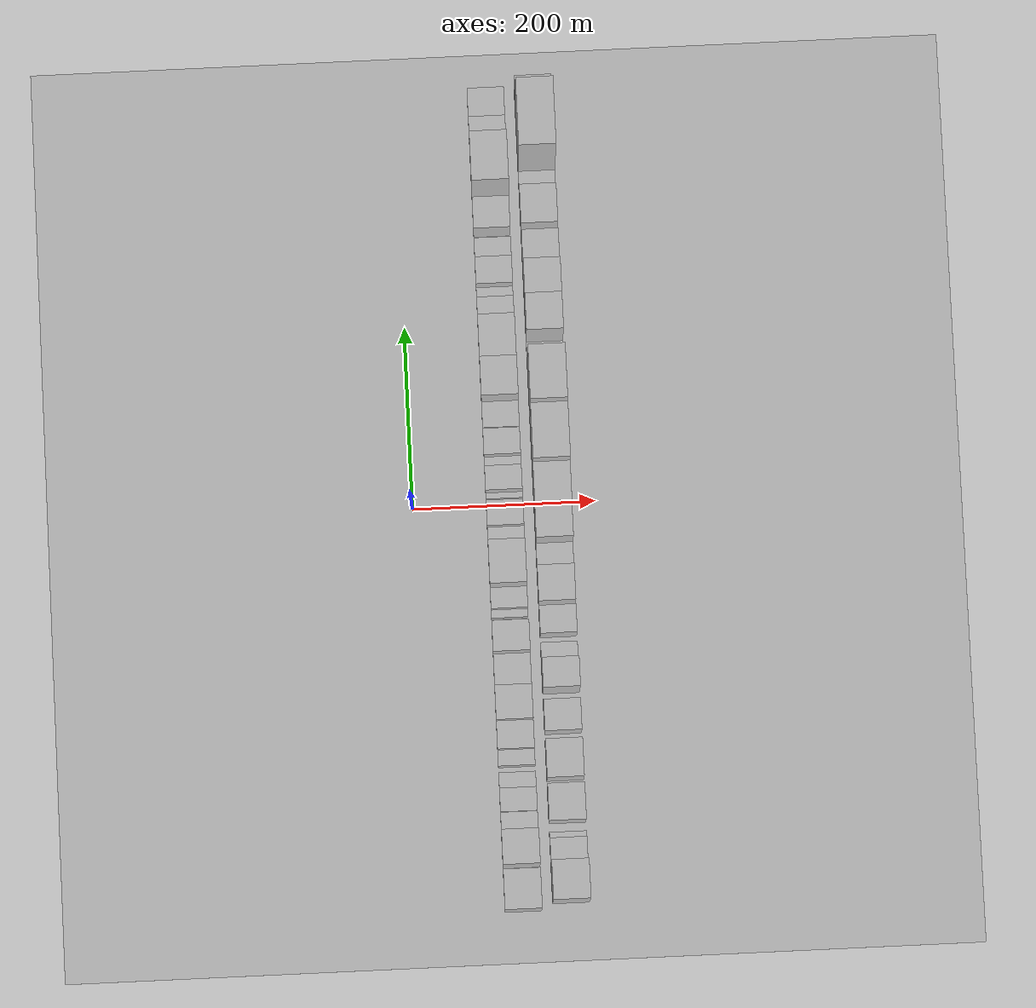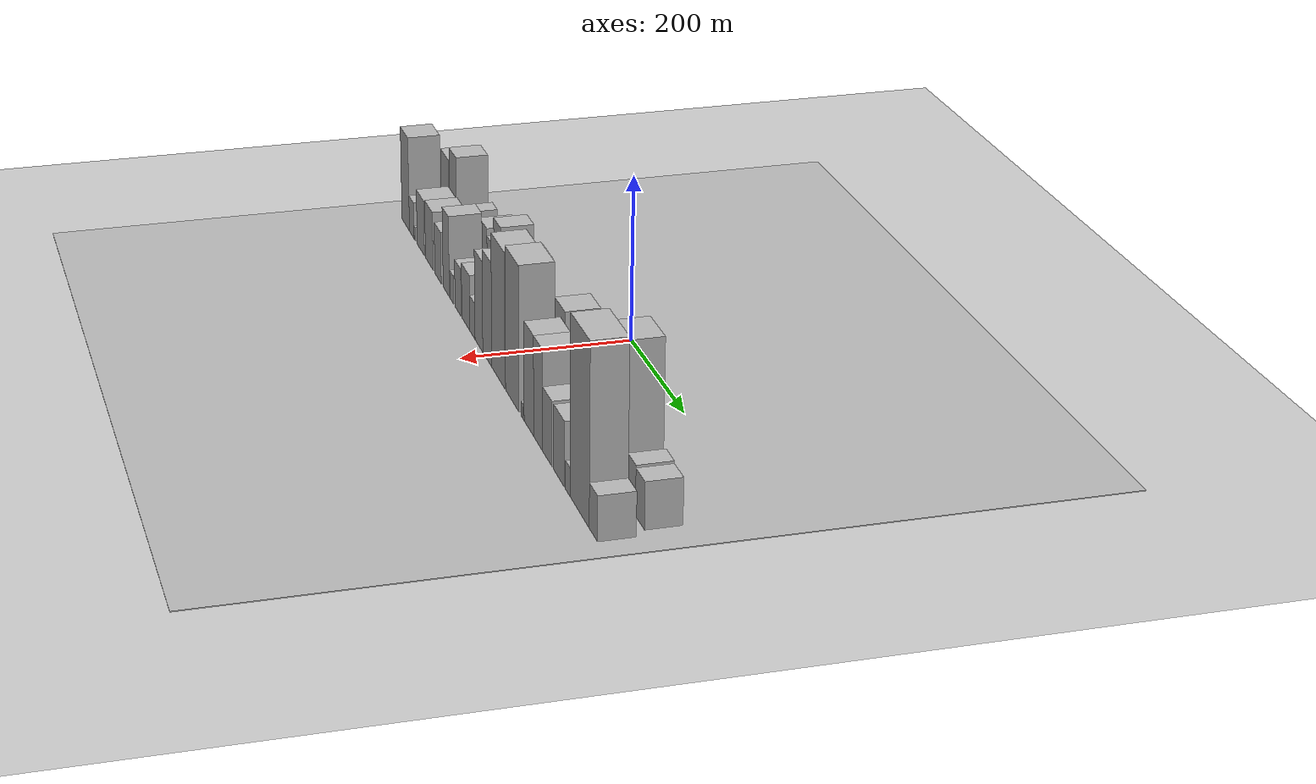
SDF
<sdf version="1.6">
 <world name="default">
  <include><name>ground_plane_1</name><uri>model://HANNAS_ground_plane</uri></include>
  <include>
   <name>ground_plane_2</name>
   <uri>model://HANNAS_ground_plane</uri>
   <pose>100 0 0  0 0 0</pose>
  </include>
  <model name="building_1">
   <static>1</static>
   <pose>100.0000 -422.2307 0 0.000000 0.000000 0.000000</pose>
   <link name="link">
    <pose>0 0 43.50 0 0 0</pose>
    <collision name="collision"><geometry><box><size>40.0000 43.5385 87.0000</size></box></geometry></collision>
    <visual name="visual">
     <cast_shadows>0</cast_shadows>
     <geometry><box><size>40.0000 43.5385 87.0000</size></box></geometry>
     <material>
      <script>
       <uri>model://HANNAS_wall/materials/scripts</uri>
       <uri>model://HANNAS_wall/materials/textures</uri>
       <name>vrc/HANNAS_wall</name>
      </script>
     </material>
    </visual>
   </link>
  </model>
  <model name="building_2">
   <static>1</static>
   <pose>100.0000 -377.5806 0 0.000000 0.000000 0.000000</pose>
   <link name="link">
    <pose>0 0 52.50 0 0 0</pose>
    <collision name="collision"><geometry><box><size>40.0000 37.7617 105.0000</size></box></geometry></collision>
    <visual name="visual">
     <cast_shadows>0</cast_shadows>
     <geometry><box><size>40.0000 37.7617 105.0000</size></box></geometry>
     <material>
      <script>
       <uri>model://HANNAS_wall/materials/scripts</uri>
       <uri>model://HANNAS_wall/materials/textures</uri>
       <name>vrc/HANNAS_wall</name>
      </script>
     </material>
    </visual>
   </link>
  </model>
  <model name="building_3">
   <static>1</static>
   <pose>100.0000 -348.0409 0 0.000000 0.000000 0.000000</pose>
   <link name="link">
    <pose>0 0 21.00 0 0 0</pose>
    <collision name="collision"><geometry><box><size>40.0000 21.3179 42.0000</size></box></geometry></collision>
    <visual name="visual">
     <cast_shadows>0</cast_shadows>
     <geometry><box><size>40.0000 21.3179 42.0000</size></box></geometry>
     <material>
      <script>
       <uri>model://HANNAS_wall/materials/scripts</uri>
       <uri>model://HANNAS_wall/materials/textures</uri>
       <name>vrc/HANNAS_wall</name>
      </script>
     </material>
    </visual>
   </link>
  </model>
  <model name="building_4">
   <static>1</static>
   <pose>100.0000 -324.4966 0 0.000000 0.000000 0.000000</pose>
   <link name="link">
    <pose>0 0 25.50 0 0 0</pose>
    <collision name="collision"><geometry><box><size>40.0000 25.7706 51.0000</size></box></geometry></collision>
    <visual name="visual">
     <cast_shadows>0</cast_shadows>
     <geometry><box><size>40.0000 25.7706 51.0000</size></box></geometry>
     <material>
      <script>
       <uri>model://HANNAS_wall/materials/scripts</uri>
       <uri>model://HANNAS_wall/materials/textures</uri>
       <name>vrc/HANNAS_wall</name>
      </script>
     </material>
    </visual>
   </link>
  </model>
  <model name="building_5">
   <static>1</static>
   <pose>100.0000 -302.6814 0 0.000000 0.000000 0.000000</pose>
   <link name="link">
    <pose>0 0 15.00 0 0 0</pose>
    <collision name="collision"><geometry><box><size>40.0000 17.8598 30.0000</size></box></geometry></collision>
    <visual name="visual">
     <cast_shadows>0</cast_shadows>
     <geometry><box><size>40.0000 17.8598 30.0000</size></box></geometry>
     <material>
      <script>
       <uri>model://HANNAS_wall/materials/scripts</uri>
       <uri>model://HANNAS_wall/materials/textures</uri>
       <name>vrc/HANNAS_wall</name>
      </script>
     </material>
    </visual>
   </link>
  </model>
  <model name="building_6">
   <static>1</static>
   <pose>100.0000 -278.0733 0 0.000000 0.000000 0.000000</pose>
   <link name="link">
    <pose>0 0 16.50 0 0 0</pose>
    <collision name="collision"><geometry><box><size>40.0000 17.3565 33.0000</size></box></geometry></collision>
    <visual name="visual">
     <cast_shadows>0</cast_shadows>
     <geometry><box><size>40.0000 17.3565 33.0000</size></box></geometry>
     <material>
      <script>
       <uri>model://HANNAS_wall/materials/scripts</uri>
       <uri>model://HANNAS_wall/materials/textures</uri>
       <name>vrc/HANNAS_wall</name>
      </script>
     </material>
    </visual>
   </link>
  </model>
  <model name="building_7">
   <static>1</static>
   <pose>100.0000 -254.1382 0 0.000000 0.000000 0.000000</pose>
   <link name="link">
    <pose>0 0 25.50 0 0 0</pose>
    <collision name="collision"><geometry><box><size>40.0000 30.5135 51.0000</size></box></geometry></collision>
    <visual name="visual">
     <cast_shadows>0</cast_shadows>
     <geometry><box><size>40.0000 30.5135 51.0000</size></box></geometry>
     <material>
      <script>
       <uri>model://HANNAS_wall/materials/scripts</uri>
       <uri>model://HANNAS_wall/materials/textures</uri>
       <name>vrc/HANNAS_wall</name>
      </script>
     </material>
    </visual>
   </link>
  </model>
  <model name="building_8">
   <static>1</static>
   <pose>100.0000 -220.2357 0 0.000000 0.000000 0.000000</pose>
   <link name="link">
    <pose>0 0 36.00 0 0 0</pose>
    <collision name="collision"><geometry><box><size>40.0000 37.2916 72.0000</size></box></geometry></collision>
    <visual name="visual">
     <cast_shadows>0</cast_shadows>
     <geometry><box><size>40.0000 37.2916 72.0000</size></box></geometry>
     <material>
      <script>
       <uri>model://HANNAS_wall/materials/scripts</uri>
       <uri>model://HANNAS_wall/materials/textures</uri>
       <name>vrc/HANNAS_wall</name>
      </script>
     </material>
    </visual>
   </link>
  </model>
  <model name="building_9">
   <static>1</static>
   <pose>100.0000 -184.4779 0 0.000000 0.000000 0.000000</pose>
   <link name="link">
    <pose>0 0 31.50 0 0 0</pose>
    <collision name="collision"><geometry><box><size>40.0000 34.2240 63.0000</size></box></geometry></collision>
    <visual name="visual">
     <cast_shadows>0</cast_shadows>
     <geometry><box><size>40.0000 34.2240 63.0000</size></box></geometry>
     <material>
      <script>
       <uri>model://HANNAS_wall/materials/scripts</uri>
       <uri>model://HANNAS_wall/materials/textures</uri>
       <name>vrc/HANNAS_wall</name>
      </script>
     </material>
    </visual>
   </link>
  </model>
  <model name="building_10">
   <static>1</static>
   <pose>100.0000 -150.6584 0 0.000000 0.000000 0.000000</pose>
   <link name="link">
    <pose>0 0 49.50 0 0 0</pose>
    <collision name="collision"><geometry><box><size>40.0000 33.4150 99.0000</size></box></geometry></collision>
    <visual name="visual">
     <cast_shadows>0</cast_shadows>
     <geometry><box><size>40.0000 33.4150 99.0000</size></box></geometry>
     <material>
      <script>
       <uri>model://HANNAS_wall/materials/scripts</uri>
       <uri>model://HANNAS_wall/materials/textures</uri>
       <name>vrc/HANNAS_wall</name>
      </script>
     </material>
    </visual>
   </link>
  </model>
  <model name="building_11">
   <static>1</static>
   <pose>100.0000 -120.4572 0 0.000000 0.000000 0.000000</pose>
   <link name="link">
    <pose>0 0 10.50 0 0 0</pose>
    <collision name="collision"><geometry><box><size>40.0000 8.9874 21.0000</size></box></geometry></collision>
    <visual name="visual">
     <cast_shadows>0</cast_shadows>
     <geometry><box><size>40.0000 8.9874 21.0000</size></box></geometry>
     <material>
      <script>
       <uri>model://HANNAS_wall/materials/scripts</uri>
       <uri>model://HANNAS_wall/materials/textures</uri>
       <name>vrc/HANNAS_wall</name>
      </script>
     </material>
    </visual>
   </link>
  </model>
  <model name="building_12">
   <static>1</static>
   <pose>100.0000 -104.4853 0 0.000000 0.000000 0.000000</pose>
   <link name="link">
    <pose>0 0 19.50 0 0 0</pose>
    <collision name="collision"><geometry><box><size>40.0000 22.9565 39.0000</size></box></geometry></collision>
    <visual name="visual">
     <cast_shadows>0</cast_shadows>
     <geometry><box><size>40.0000 22.9565 39.0000</size></box></geometry>
     <material>
      <script>
       <uri>model://HANNAS_wall/materials/scripts</uri>
       <uri>model://HANNAS_wall/materials/textures</uri>
       <name>vrc/HANNAS_wall</name>
      </script>
     </material>
    </visual>
   </link>
  </model>
  <model name="building_13">
   <static>1</static>
   <pose>100.0000 -69.2503 0 0.000000 0.000000 0.000000</pose>
   <link name="link">
    <pose>0 0 45.00 0 0 0</pose>
    <collision name="collision"><geometry><box><size>40.0000 47.5133 90.0000</size></box></geometry></collision>
    <visual name="visual">
     <cast_shadows>0</cast_shadows>
     <geometry><box><size>40.0000 47.5133 90.0000</size></box></geometry>
     <material>
      <script>
       <uri>model://HANNAS_wall/materials/scripts</uri>
       <uri>model://HANNAS_wall/materials/textures</uri>
       <name>vrc/HANNAS_wall</name>
      </script>
     </material>
    </visual>
   </link>
  </model>
  <model name="building_14">
   <static>1</static>
   <pose>100.0000 -35.9817 0 0.000000 0.000000 0.000000</pose>
   <link name="link">
    <pose>0 0 16.50 0 0 0</pose>
    <collision name="collision"><geometry><box><size>40.0000 19.0240 33.0000</size></box></geometry></collision>
    <visual name="visual">
     <cast_shadows>0</cast_shadows>
     <geometry><box><size>40.0000 19.0240 33.0000</size></box></geometry>
     <material>
      <script>
       <uri>model://HANNAS_wall/materials/scripts</uri>
       <uri>model://HANNAS_wall/materials/textures</uri>
       <name>vrc/HANNAS_wall</name>
      </script>
     </material>
    </visual>
   </link>
  </model>
  <model name="building_15">
   <static>1</static>
   <pose>100.0000 -12.5683 0 0.000000 0.000000 0.000000</pose>
   <link name="link">
    <pose>0 0 25.50 0 0 0</pose>
    <collision name="collision"><geometry><box><size>40.0000 27.8028 51.0000</size></box></geometry></collision>
    <visual name="visual">
     <cast_shadows>0</cast_shadows>
     <geometry><box><size>40.0000 27.8028 51.0000</size></box></geometry>
     <material>
      <script>
       <uri>model://HANNAS_wall/materials/scripts</uri>
       <uri>model://HANNAS_wall/materials/textures</uri>
       <name>vrc/HANNAS_wall</name>
      </script>
     </material>
    </visual>
   </link>
  </model>
  <model name="building_16">
   <static>1</static>
   <pose>100.0000 9.6439 0 0.000000 0.000000 0.000000</pose>
   <link name="link">
    <pose>0 0 7.50 0 0 0</pose>
    <collision name="collision"><geometry><box><size>40.0000 6.6216 15.0000</size></box></geometry></collision>
    <visual name="visual">
     <cast_shadows>0</cast_shadows>
     <geometry><box><size>40.0000 6.6216 15.0000</size></box></geometry>
     <material>
      <script>
       <uri>model://HANNAS_wall/materials/scripts</uri>
       <uri>model://HANNAS_wall/materials/textures</uri>
       <name>vrc/HANNAS_wall</name>
      </script>
     </material>
    </visual>
   </link>
  </model>
  <model name="building_17">
   <static>1</static>
   <pose>100.0000 26.3164 0 0.000000 0.000000 0.000000</pose>
   <link name="link">
    <pose>0 0 22.50 0 0 0</pose>
    <collision name="collision"><geometry><box><size>40.0000 26.7233 45.0000</size></box></geometry></collision>
    <visual name="visual">
     <cast_shadows>0</cast_shadows>
     <geometry><box><size>40.0000 26.7233 45.0000</size></box></geometry>
     <material>
      <script>
       <uri>model://HANNAS_wall/materials/scripts</uri>
       <uri>model://HANNAS_wall/materials/textures</uri>
       <name>vrc/HANNAS_wall</name>
      </script>
     </material>
    </visual>
   </link>
  </model>
  <model name="building_18">
   <static>1</static>
   <pose>100.0000 45.5507 0 0.000000 0.000000 0.000000</pose>
   <link name="link">
    <pose>0 0 12.00 0 0 0</pose>
    <collision name="collision"><geometry><box><size>40.0000 11.7455 24.0000</size></box></geometry></collision>
    <visual name="visual">
     <cast_shadows>0</cast_shadows>
     <geometry><box><size>40.0000 11.7455 24.0000</size></box></geometry>
     <material>
      <script>
       <uri>model://HANNAS_wall/materials/scripts</uri>
       <uri>model://HANNAS_wall/materials/textures</uri>
       <name>vrc/HANNAS_wall</name>
      </script>
     </material>
    </visual>
   </link>
  </model>
  <model name="building_19">
   <static>1</static>
   <pose>100.0000 65.7576 0 0.000000 0.000000 0.000000</pose>
   <link name="link">
    <pose>0 0 24.00 0 0 0</pose>
    <collision name="collision"><geometry><box><size>40.0000 28.6682 48.0000</size></box></geometry></collision>
    <visual name="visual">
     <cast_shadows>0</cast_shadows>
     <geometry><box><size>40.0000 28.6682 48.0000</size></box></geometry>
     <material>
      <script>
       <uri>model://HANNAS_wall/materials/scripts</uri>
       <uri>model://HANNAS_wall/materials/textures</uri>
       <name>vrc/HANNAS_wall</name>
      </script>
     </material>
    </visual>
   </link>
  </model>
  <model name="building_20">
   <static>1</static>
   <pose>100.0000 94.2861 0 0.000000 0.000000 0.000000</pose>
   <link name="link">
    <pose>0 0 27.00 0 0 0</pose>
    <collision name="collision"><geometry><box><size>40.0000 28.3889 54.0000</size></box></geometry></collision>
    <visual name="visual">
     <cast_shadows>0</cast_shadows>
     <geometry><box><size>40.0000 28.3889 54.0000</size></box></geometry>
     <material>
      <script>
       <uri>model://HANNAS_wall/materials/scripts</uri>
       <uri>model://HANNAS_wall/materials/textures</uri>
       <name>vrc/HANNAS_wall</name>
      </script>
     </material>
    </visual>
   </link>
  </model>
  <model name="building_21">
   <static>1</static>
   <pose>100.0000 129.6950 0 0.000000 0.000000 0.000000</pose>
   <link name="link">
    <pose>0 0 55.50 0 0 0</pose>
    <collision name="collision"><geometry><box><size>40.0000 42.4289 111.0000</size></box></geometry></collision>
    <visual name="visual">
     <cast_shadows>0</cast_shadows>
     <geometry><box><size>40.0000 42.4289 111.0000</size></box></geometry>
     <material>
      <script>
       <uri>model://HANNAS_wall/materials/scripts</uri>
       <uri>model://HANNAS_wall/materials/textures</uri>
       <name>vrc/HANNAS_wall</name>
      </script>
     </material>
    </visual>
   </link>
  </model>
  <model name="building_22">
   <static>1</static>
   <pose>100.0000 175.3506 0 0.000000 0.000000 0.000000</pose>
   <link name="link">
    <pose>0 0 45.00 0 0 0</pose>
    <collision name="collision"><geometry><box><size>40.0000 48.8822 90.0000</size></box></geometry></collision>
    <visual name="visual">
     <cast_shadows>0</cast_shadows>
     <geometry><box><size>40.0000 48.8822 90.0000</size></box></geometry>
     <material>
      <script>
       <uri>model://HANNAS_wall/materials/scripts</uri>
       <uri>model://HANNAS_wall/materials/textures</uri>
       <name>vrc/HANNAS_wall</name>
      </script>
     </material>
    </visual>
   </link>
  </model>
  <model name="building_23">
   <static>1</static>
   <pose>100.0000 212.3813 0 0.000000 0.000000 0.000000</pose>
   <link name="link">
    <pose>0 0 22.50 0 0 0</pose>
    <collision name="collision"><geometry><box><size>40.0000 25.1791 45.0000</size></box></geometry></collision>
    <visual name="visual">
     <cast_shadows>0</cast_shadows>
     <geometry><box><size>40.0000 25.1791 45.0000</size></box></geometry>
     <material>
      <script>
       <uri>model://HANNAS_wall/materials/scripts</uri>
       <uri>model://HANNAS_wall/materials/textures</uri>
       <name>vrc/HANNAS_wall</name>
      </script>
     </material>
    </visual>
   </link>
  </model>
  <model name="building_24">
   <static>1</static>
   <pose>100.0000 231.3632 0 0.000000 0.000000 0.000000</pose>
   <link name="link">
    <pose>0 0 13.50 0 0 0</pose>
    <collision name="collision"><geometry><box><size>40.0000 12.7848 27.0000</size></box></geometry></collision>
    <visual name="visual">
     <cast_shadows>0</cast_shadows>
     <geometry><box><size>40.0000 12.7848 27.0000</size></box></geometry>
     <material>
      <script>
       <uri>model://HANNAS_wall/materials/scripts</uri>
       <uri>model://HANNAS_wall/materials/textures</uri>
       <name>vrc/HANNAS_wall</name>
      </script>
     </material>
    </visual>
   </link>
  </model>
  <model name="building_25">
   <static>1</static>
   <pose>100.0000 252.6446 0 0.000000 0.000000 0.000000</pose>
   <link name="link">
    <pose>0 0 28.50 0 0 0</pose>
    <collision name="collision"><geometry><box><size>40.0000 29.7781 57.0000</size></box></geometry></collision>
    <visual name="visual">
     <cast_shadows>0</cast_shadows>
     <geometry><box><size>40.0000 29.7781 57.0000</size></box></geometry>
     <material>
      <script>
       <uri>model://HANNAS_wall/materials/scripts</uri>
       <uri>model://HANNAS_wall/materials/textures</uri>
       <name>vrc/HANNAS_wall</name>
      </script>
     </material>
    </visual>
   </link>
  </model>
  <model name="building_26">
   <static>1</static>
   <pose>100.0000 279.0467 0 0.000000 0.000000 0.000000</pose>
   <link name="link">
    <pose>0 0 21.00 0 0 0</pose>
    <collision name="collision"><geometry><box><size>40.0000 23.0260 42.0000</size></box></geometry></collision>
    <visual name="visual">
     <cast_shadows>0</cast_shadows>
     <geometry><box><size>40.0000 23.0260 42.0000</size></box></geometry>
     <material>
      <script>
       <uri>model://HANNAS_wall/materials/scripts</uri>
       <uri>model://HANNAS_wall/materials/textures</uri>
       <name>vrc/HANNAS_wall</name>
      </script>
     </material>
    </visual>
   </link>
  </model>
  <model name="building_27">
   <static>1</static>
   <pose>100.0000 314.8162 0 0.000000 0.000000 0.000000</pose>
   <link name="link">
    <pose>0 0 33.00 0 0 0</pose>
    <collision name="collision"><geometry><box><size>40.0000 34.5131 66.0000</size></box></geometry></collision>
    <visual name="visual">
     <cast_shadows>0</cast_shadows>
     <geometry><box><size>40.0000 34.5131 66.0000</size></box></geometry>
     <material>
      <script>
       <uri>model://HANNAS_wall/materials/scripts</uri>
       <uri>model://HANNAS_wall/materials/textures</uri>
       <name>vrc/HANNAS_wall</name>
      </script>
     </material>
    </visual>
   </link>
  </model>
  <model name="building_28">
   <static>1</static>
   <pose>100.0000 358.7669 0 0.000000 0.000000 0.000000</pose>
   <link name="link">
    <pose>0 0 88.50 0 0 0</pose>
    <collision name="collision"><geometry><box><size>40.0000 53.3883 177.0000</size></box></geometry></collision>
    <visual name="visual">
     <cast_shadows>0</cast_shadows>
     <geometry><box><size>40.0000 53.3883 177.0000</size></box></geometry>
     <material>
      <script>
       <uri>model://HANNAS_wall/materials/scripts</uri>
       <uri>model://HANNAS_wall/materials/textures</uri>
       <name>vrc/HANNAS_wall</name>
      </script>
     </material>
    </visual>
   </link>
  </model>
  <model name="building_29">
   <static>1</static>
   <pose>100.0000 407.9077 0 0.000000 0.000000 0.000000</pose>
   <link name="link">
    <pose>0 0 28.50 0 0 0</pose>
    <collision name="collision"><geometry><box><size>40.0000 28.8933 57.0000</size></box></geometry></collision>
    <visual name="visual">
     <cast_shadows>0</cast_shadows>
     <geometry><box><size>40.0000 28.8933 57.0000</size></box></geometry>
     <material>
      <script>
       <uri>model://HANNAS_wall/materials/scripts</uri>
       <uri>model://HANNAS_wall/materials/textures</uri>
       <name>vrc/HANNAS_wall</name>
      </script>
     </material>
    </visual>
   </link>
  </model>
  <model name="building_30">
   <static>1</static>
   <pose>100.0000 438.3398 0 0.000000 0.000000 0.000000</pose>
   <link name="link">
    <pose>0 0 27.00 0 0 0</pose>
    <collision name="collision"><geometry><box><size>40.0000 31.9709 54.0000</size></box></geometry></collision>
    <visual name="visual">
     <cast_shadows>0</cast_shadows>
     <geometry><box><size>40.0000 31.9709 54.0000</size></box></geometry>
     <material>
      <script>
       <uri>model://HANNAS_wall/materials/scripts</uri>
       <uri>model://HANNAS_wall/materials/textures</uri>
       <name>vrc/HANNAS_wall</name>
      </script>
     </material>
    </visual>
   </link>
  </model>
  <model name="building_31">
   <static>1</static>
   <pose>152.0000 -415.6506 0 0.000000 0.000000 0.000000</pose>
   <link name="link">
    <pose>0 0 61.50 0 0 0</pose>
    <collision name="collision"><geometry><box><size>40.0000 42.6989 123.0000</size></box></geometry></collision>
    <visual name="visual">
     <cast_shadows>0</cast_shadows>
     <geometry><box><size>40.0000 42.6989 123.0000</size></box></geometry>
     <material>
      <script>
       <uri>model://HANNAS_wall/materials/scripts</uri>
       <uri>model://HANNAS_wall/materials/textures</uri>
       <name>vrc/HANNAS_wall</name>
      </script>
     </material>
    </visual>
   </link>
  </model>
  <model name="building_32">
   <static>1</static>
   <pose>152.0000 -380.9475 0 0.000000 0.000000 0.000000</pose>
   <link name="link">
    <pose>0 0 24.00 0 0 0</pose>
    <collision name="collision"><geometry><box><size>40.0000 26.7074 48.0000</size></box></geometry></collision>
    <visual name="visual">
     <cast_shadows>0</cast_shadows>
     <geometry><box><size>40.0000 26.7074 48.0000</size></box></geometry>
     <material>
      <script>
       <uri>model://HANNAS_wall/materials/scripts</uri>
       <uri>model://HANNAS_wall/materials/textures</uri>
       <name>vrc/HANNAS_wall</name>
      </script>
     </material>
    </visual>
   </link>
  </model>
  <model name="building_33">
   <static>1</static>
   <pose>152.0000 -363.8784 0 0.000000 0.000000 0.000000</pose>
   <link name="link">
    <pose>0 0 9.00 0 0 0</pose>
    <collision name="collision"><geometry><box><size>40.0000 7.4308 18.0000</size></box></geometry></collision>
    <visual name="visual">
     <cast_shadows>0</cast_shadows>
     <geometry><box><size>40.0000 7.4308 18.0000</size></box></geometry>
     <material>
      <script>
       <uri>model://HANNAS_wall/materials/scripts</uri>
       <uri>model://HANNAS_wall/materials/textures</uri>
       <name>vrc/HANNAS_wall</name>
      </script>
     </material>
    </visual>
   </link>
  </model>
  <model name="building_34">
   <static>1</static>
   <pose>152.0000 -330.0510 0 0.000000 0.000000 0.000000</pose>
   <link name="link">
    <pose>0 0 36.00 0 0 0</pose>
    <collision name="collision"><geometry><box><size>40.0000 40.2239 72.0000</size></box></geometry></collision>
    <visual name="visual">
     <cast_shadows>0</cast_shadows>
     <geometry><box><size>40.0000 40.2239 72.0000</size></box></geometry>
     <material>
      <script>
       <uri>model://HANNAS_wall/materials/scripts</uri>
       <uri>model://HANNAS_wall/materials/textures</uri>
       <name>vrc/HANNAS_wall</name>
      </script>
     </material>
    </visual>
   </link>
  </model>
  <model name="building_35">
   <static>1</static>
   <pose>152.0000 -282.9661 0 0.000000 0.000000 0.000000</pose>
   <link name="link">
    <pose>0 0 37.50 0 0 0</pose>
    <collision name="collision"><geometry><box><size>40.0000 41.9460 75.0000</size></box></geometry></collision>
    <visual name="visual">
     <cast_shadows>0</cast_shadows>
     <geometry><box><size>40.0000 41.9460 75.0000</size></box></geometry>
     <material>
      <script>
       <uri>model://HANNAS_wall/materials/scripts</uri>
       <uri>model://HANNAS_wall/materials/textures</uri>
       <name>vrc/HANNAS_wall</name>
      </script>
     </material>
    </visual>
   </link>
  </model>
  <model name="building_36">
   <static>1</static>
   <pose>152.0000 -235.8492 0 0.000000 0.000000 0.000000</pose>
   <link name="link">
    <pose>0 0 33.00 0 0 0</pose>
    <collision name="collision"><geometry><box><size>40.0000 34.2877 66.0000</size></box></geometry></collision>
    <visual name="visual">
     <cast_shadows>0</cast_shadows>
     <geometry><box><size>40.0000 34.2877 66.0000</size></box></geometry>
     <material>
      <script>
       <uri>model://HANNAS_wall/materials/scripts</uri>
       <uri>model://HANNAS_wall/materials/textures</uri>
       <name>vrc/HANNAS_wall</name>
      </script>
     </material>
    </visual>
   </link>
  </model>
  <model name="building_37">
   <static>1</static>
   <pose>152.0000 -192.4827 0 0.000000 0.000000 0.000000</pose>
   <link name="link">
    <pose>0 0 51.00 0 0 0</pose>
    <collision name="collision"><geometry><box><size>40.0000 32.4453 102.0000</size></box></geometry></collision>
    <visual name="visual">
     <cast_shadows>0</cast_shadows>
     <geometry><box><size>40.0000 32.4453 102.0000</size></box></geometry>
     <material>
      <script>
       <uri>model://HANNAS_wall/materials/scripts</uri>
       <uri>model://HANNAS_wall/materials/textures</uri>
       <name>vrc/HANNAS_wall</name>
      </script>
     </material>
    </visual>
   </link>
  </model>
  <model name="building_38">
   <static>1</static>
   <pose>152.0000 -164.1408 0 0.000000 0.000000 0.000000</pose>
   <link name="link">
    <pose>0 0 18.00 0 0 0</pose>
    <collision name="collision"><geometry><box><size>40.0000 18.2385 36.0000</size></box></geometry></collision>
    <visual name="visual">
     <cast_shadows>0</cast_shadows>
     <geometry><box><size>40.0000 18.2385 36.0000</size></box></geometry>
     <material>
      <script>
       <uri>model://HANNAS_wall/materials/scripts</uri>
       <uri>model://HANNAS_wall/materials/textures</uri>
       <name>vrc/HANNAS_wall</name>
      </script>
     </material>
    </visual>
   </link>
  </model>
  <model name="building_39">
   <static>1</static>
   <pose>152.0000 -131.8036 0 0.000000 0.000000 0.000000</pose>
   <link name="link">
    <pose>0 0 30.00 0 0 0</pose>
    <collision name="collision"><geometry><box><size>40.0000 30.4358 60.0000</size></box></geometry></collision>
    <visual name="visual">
     <cast_shadows>0</cast_shadows>
     <geometry><box><size>40.0000 30.4358 60.0000</size></box></geometry>
     <material>
      <script>
       <uri>model://HANNAS_wall/materials/scripts</uri>
       <uri>model://HANNAS_wall/materials/textures</uri>
       <name>vrc/HANNAS_wall</name>
      </script>
     </material>
    </visual>
   </link>
  </model>
  <model name="building_40">
   <static>1</static>
   <pose>152.0000 -92.9772 0 0.000000 0.000000 0.000000</pose>
   <link name="link">
    <pose>0 0 34.50 0 0 0</pose>
    <collision name="collision"><geometry><box><size>40.0000 39.2171 69.0000</size></box></geometry></collision>
    <visual name="visual">
     <cast_shadows>0</cast_shadows>
     <geometry><box><size>40.0000 39.2171 69.0000</size></box></geometry>
     <material>
      <script>
       <uri>model://HANNAS_wall/materials/scripts</uri>
       <uri>model://HANNAS_wall/materials/textures</uri>
       <name>vrc/HANNAS_wall</name>
      </script>
     </material>
    </visual>
   </link>
  </model>
  <model name="building_41">
   <static>1</static>
   <pose>152.0000 -60.4992 0 0.000000 0.000000 0.000000</pose>
   <link name="link">
    <pose>0 0 22.50 0 0 0</pose>
    <collision name="collision"><geometry><box><size>40.0000 25.7389 45.0000</size></box></geometry></collision>
    <visual name="visual">
     <cast_shadows>0</cast_shadows>
     <geometry><box><size>40.0000 25.7389 45.0000</size></box></geometry>
     <material>
      <script>
       <uri>model://HANNAS_wall/materials/scripts</uri>
       <uri>model://HANNAS_wall/materials/textures</uri>
       <name>vrc/HANNAS_wall</name>
      </script>
     </material>
    </visual>
   </link>
  </model>
  <model name="building_42">
   <static>1</static>
   <pose>152.0000 -29.0679 0 0.000000 0.000000 0.000000</pose>
   <link name="link">
    <pose>0 0 55.50 0 0 0</pose>
    <collision name="collision"><geometry><box><size>40.0000 37.1236 111.0000</size></box></geometry></collision>
    <visual name="visual">
     <cast_shadows>0</cast_shadows>
     <geometry><box><size>40.0000 37.1236 111.0000</size></box></geometry>
     <material>
      <script>
       <uri>model://HANNAS_wall/materials/scripts</uri>
       <uri>model://HANNAS_wall/materials/textures</uri>
       <name>vrc/HANNAS_wall</name>
      </script>
     </material>
    </visual>
   </link>
  </model>
  <model name="building_43">
   <static>1</static>
   <pose>152.0000 10.8815 0 0.000000 0.000000 0.000000</pose>
   <link name="link">
    <pose>0 0 63.00 0 0 0</pose>
    <collision name="collision"><geometry><box><size>40.0000 42.7753 126.0000</size></box></geometry></collision>
    <visual name="visual">
     <cast_shadows>0</cast_shadows>
     <geometry><box><size>40.0000 42.7753 126.0000</size></box></geometry>
     <material>
      <script>
       <uri>model://HANNAS_wall/materials/scripts</uri>
       <uri>model://HANNAS_wall/materials/textures</uri>
       <name>vrc/HANNAS_wall</name>
      </script>
     </material>
    </visual>
   </link>
  </model>
  <model name="building_44">
   <static>1</static>
   <pose>152.0000 62.0381 0 0.000000 0.000000 0.000000</pose>
   <link name="link">
    <pose>0 0 81.00 0 0 0</pose>
    <collision name="collision"><geometry><box><size>40.0000 59.5380 162.0000</size></box></geometry></collision>
    <visual name="visual">
     <cast_shadows>0</cast_shadows>
     <geometry><box><size>40.0000 59.5380 162.0000</size></box></geometry>
     <material>
      <script>
       <uri>model://HANNAS_wall/materials/scripts</uri>
       <uri>model://HANNAS_wall/materials/textures</uri>
       <name>vrc/HANNAS_wall</name>
      </script>
     </material>
    </visual>
   </link>
  </model>
  <model name="building_45">
   <static>1</static>
   <pose>152.0000 124.1637 0 0.000000 0.000000 0.000000</pose>
   <link name="link">
    <pose>0 0 85.50 0 0 0</pose>
    <collision name="collision"><geometry><box><size>40.0000 58.7131 171.0000</size></box></geometry></collision>
    <visual name="visual">
     <cast_shadows>0</cast_shadows>
     <geometry><box><size>40.0000 58.7131 171.0000</size></box></geometry>
     <material>
      <script>
       <uri>model://HANNAS_wall/materials/scripts</uri>
       <uri>model://HANNAS_wall/materials/textures</uri>
       <name>vrc/HANNAS_wall</name>
      </script>
     </material>
    </visual>
   </link>
  </model>
  <model name="building_46">
   <static>1</static>
   <pose>152.0000 166.4871 0 0.000000 0.000000 0.000000</pose>
   <link name="link">
    <pose>0 0 9.00 0 0 0</pose>
    <collision name="collision"><geometry><box><size>40.0000 7.9338 18.0000</size></box></geometry></collision>
    <visual name="visual">
     <cast_shadows>0</cast_shadows>
     <geometry><box><size>40.0000 7.9338 18.0000</size></box></geometry>
     <material>
      <script>
       <uri>model://HANNAS_wall/materials/scripts</uri>
       <uri>model://HANNAS_wall/materials/textures</uri>
       <name>vrc/HANNAS_wall</name>
      </script>
     </material>
    </visual>
   </link>
  </model>
  <model name="building_47">
   <static>1</static>
   <pose>152.0000 173.5535 0 0.000000 0.000000 0.000000</pose>
   <link name="link">
    <pose>0 0 7.50 0 0 0</pose>
    <collision name="collision"><geometry><box><size>40.0000 6.1989 15.0000</size></box></geometry></collision>
    <visual name="visual">
     <cast_shadows>0</cast_shadows>
     <geometry><box><size>40.0000 6.1989 15.0000</size></box></geometry>
     <material>
      <script>
       <uri>model://HANNAS_wall/materials/scripts</uri>
       <uri>model://HANNAS_wall/materials/textures</uri>
       <name>vrc/HANNAS_wall</name>
      </script>
     </material>
    </visual>
   </link>
  </model>
  <model name="building_48">
   <static>1</static>
   <pose>152.0000 196.7118 0 0.000000 0.000000 0.000000</pose>
   <link name="link">
    <pose>0 0 58.50 0 0 0</pose>
    <collision name="collision"><geometry><box><size>40.0000 40.1176 117.0000</size></box></geometry></collision>
    <visual name="visual">
     <cast_shadows>0</cast_shadows>
     <geometry><box><size>40.0000 40.1176 117.0000</size></box></geometry>
     <material>
      <script>
       <uri>model://HANNAS_wall/materials/scripts</uri>
       <uri>model://HANNAS_wall/materials/textures</uri>
       <name>vrc/HANNAS_wall</name>
      </script>
     </material>
    </visual>
   </link>
  </model>
  <model name="building_49">
   <static>1</static>
   <pose>152.0000 235.6485 0 0.000000 0.000000 0.000000</pose>
   <link name="link">
    <pose>0 0 58.50 0 0 0</pose>
    <collision name="collision"><geometry><box><size>40.0000 37.7558 117.0000</size></box></geometry></collision>
    <visual name="visual">
     <cast_shadows>0</cast_shadows>
     <geometry><box><size>40.0000 37.7558 117.0000</size></box></geometry>
     <material>
      <script>
       <uri>model://HANNAS_wall/materials/scripts</uri>
       <uri>model://HANNAS_wall/materials/textures</uri>
       <name>vrc/HANNAS_wall</name>
      </script>
     </material>
    </visual>
   </link>
  </model>
  <model name="building_50">
   <static>1</static>
   <pose>152.0000 273.4800 0 0.000000 0.000000 0.000000</pose>
   <link name="link">
    <pose>0 0 37.50 0 0 0</pose>
    <collision name="collision"><geometry><box><size>40.0000 37.9074 75.0000</size></box></geometry></collision>
    <visual name="visual">
     <cast_shadows>0</cast_shadows>
     <geometry><box><size>40.0000 37.9074 75.0000</size></box></geometry>
     <material>
      <script>
       <uri>model://HANNAS_wall/materials/scripts</uri>
       <uri>model://HANNAS_wall/materials/textures</uri>
       <name>vrc/HANNAS_wall</name>
      </script>
     </material>
    </visual>
   </link>
  </model>
  <model name="building_51">
   <static>1</static>
   <pose>152.0000 320.8214 0 0.000000 0.000000 0.000000</pose>
   <link name="link">
    <pose>0 0 37.50 0 0 0</pose>
    <collision name="collision"><geometry><box><size>40.0000 42.7753 75.0000</size></box></geometry></collision>
    <visual name="visual">
     <cast_shadows>0</cast_shadows>
     <geometry><box><size>40.0000 42.7753 75.0000</size></box></geometry>
     <material>
      <script>
       <uri>model://HANNAS_wall/materials/scripts</uri>
       <uri>model://HANNAS_wall/materials/textures</uri>
       <name>vrc/HANNAS_wall</name>
      </script>
     </material>
    </visual>
   </link>
  </model>
  <model name="building_52">
   <static>1</static>
   <pose>152.0000 354.7209 0 0.000000 0.000000 0.000000</pose>
   <link name="link">
    <pose>0 0 16.50 0 0 0</pose>
    <collision name="collision"><geometry><box><size>40.0000 17.0237 33.0000</size></box></geometry></collision>
    <visual name="visual">
     <cast_shadows>0</cast_shadows>
     <geometry><box><size>40.0000 17.0237 33.0000</size></box></geometry>
     <material>
      <script>
       <uri>model://HANNAS_wall/materials/scripts</uri>
       <uri>model://HANNAS_wall/materials/textures</uri>
       <name>vrc/HANNAS_wall</name>
      </script>
     </material>
    </visual>
   </link>
  </model>
  <model name="building_53">
   <static>1</static>
   <pose>152.0000 399.7523 0 0.000000 0.000000 0.000000</pose>
   <link name="link">
    <pose>0 0 102.00 0 0 0</pose>
    <collision name="collision"><geometry><box><size>40.0000 73.0393 204.0000</size></box></geometry></collision>
    <visual name="visual">
     <cast_shadows>0</cast_shadows>
     <geometry><box><size>40.0000 73.0393 204.0000</size></box></geometry>
     <material>
      <script>
       <uri>model://HANNAS_wall/materials/scripts</uri>
       <uri>model://HANNAS_wall/materials/textures</uri>
       <name>vrc/HANNAS_wall</name>
      </script>
     </material>
    </visual>
   </link>
  </model>
  <model name="building_54">
   <static>1</static>
   <pose>152.0000 451.4084 0 0.000000 0.000000 0.000000</pose>
   <link name="link">
    <pose>0 0 25.50 0 0 0</pose>
    <collision name="collision"><geometry><box><size>40.0000 30.2729 51.0000</size></box></geometry></collision>
    <visual name="visual">
     <cast_shadows>0</cast_shadows>
     <geometry><box><size>40.0000 30.2729 51.0000</size></box></geometry>
     <material>
      <script>
       <uri>model://HANNAS_wall/materials/scripts</uri>
       <uri>model://HANNAS_wall/materials/textures</uri>
       <name>vrc/HANNAS_wall</name>
      </script>
     </material>
    </visual>
   </link>
  </model>
 </world>
</sdf>
